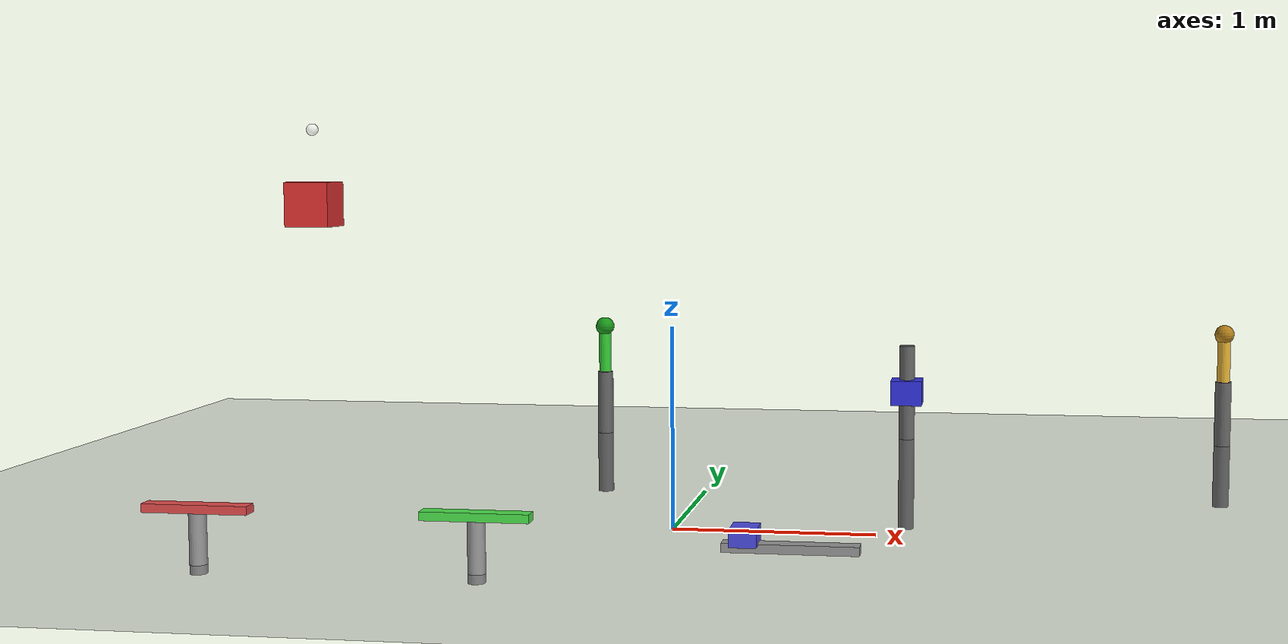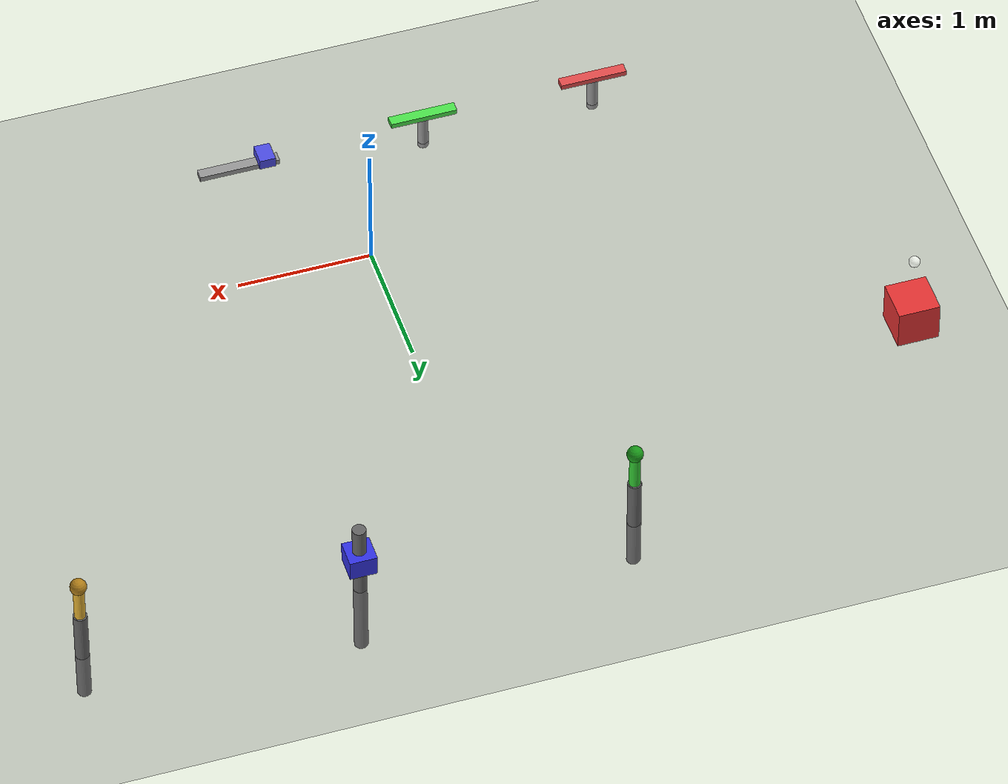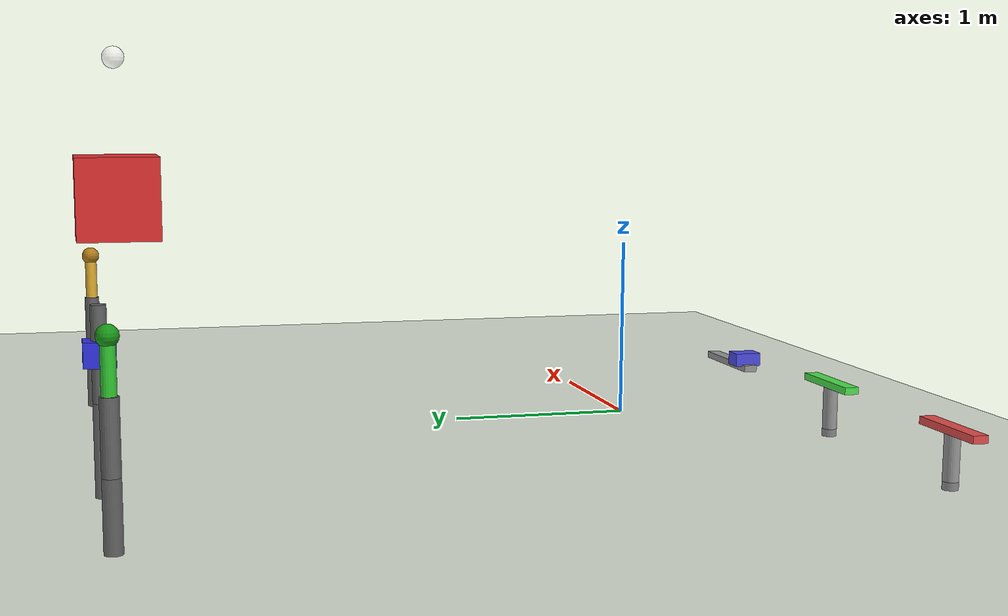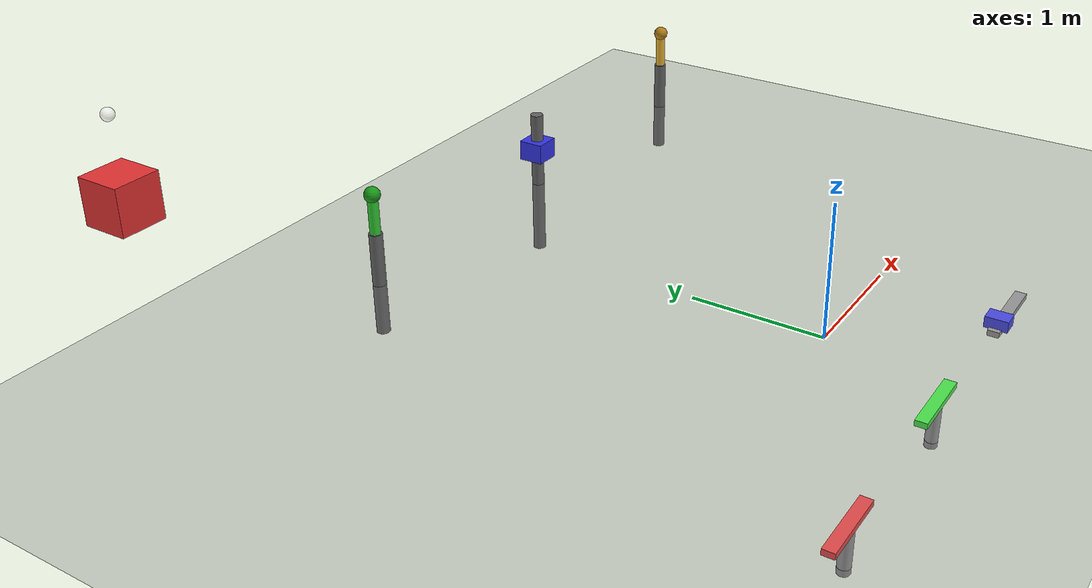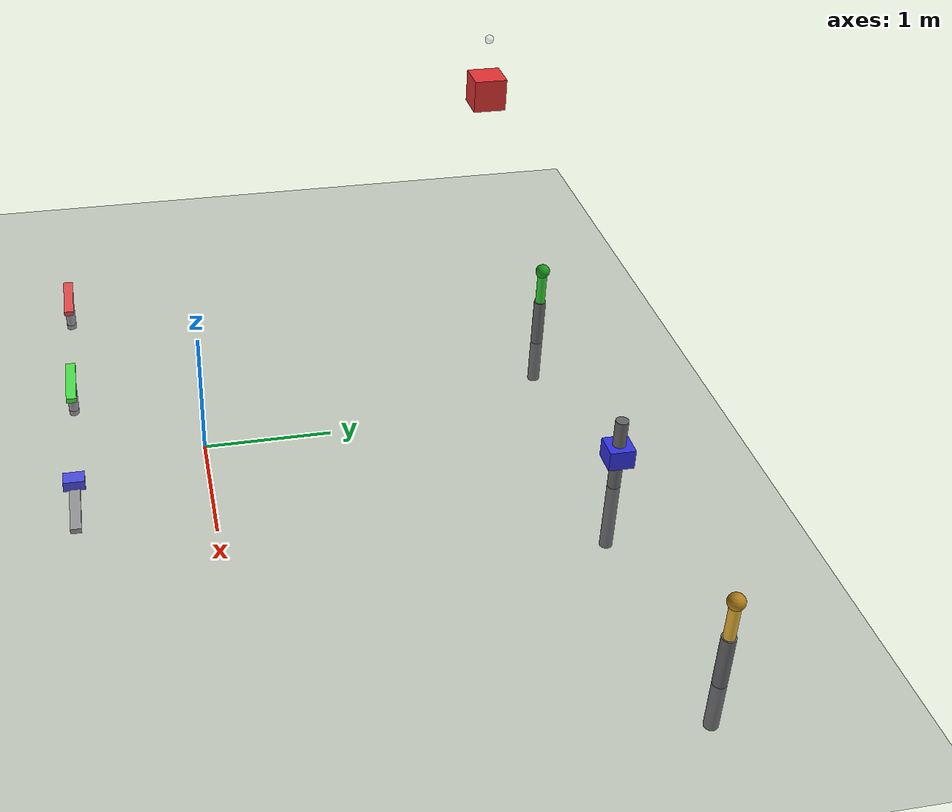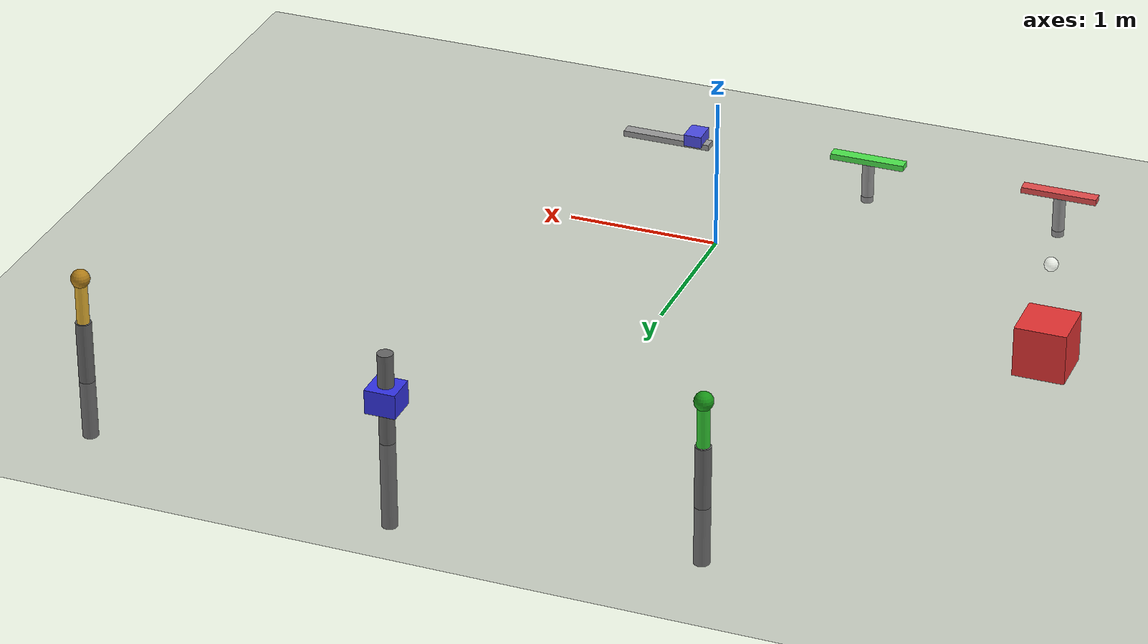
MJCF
<!-- 四种关节类型对比: free / ball / slide / hinge -->
<mujoco model="joint_types">
    <compiler angle="radian" autolimits="true"/>
    <option timestep="0.002" gravity="0 0 -9.81"/>

    <visual>
        <global realtime="1"/>
        <quality shadowsize="1024"/>
        <headlight diffuse="1 1 1" specular="0.5 0.5 0.5" active="1"/>
    </visual>

    <asset>
        <texture name="grid" type="2d" builtin="checker" width="512" height="512"
                 rgb1=".15 .15 .15" rgb2=".7 .7 .7"/>
        <material name="grid" texture="grid"/>
    </asset>

    <worldbody>
        <geom name="floor" type="plane" size="20 20 .01" material="grid" condim="3"/>

        <!-- freejoint: 完全自由运动 -->
        <body pos="-3 3 1.5">
            <freejoint/>
            <geom type="box" size="0.15 0.15 0.15" rgba=".9 .2 .2 1"/>
            <site type="sphere" size="0.04" rgba="1 1 1 .5" pos="0 0 0.5"/>
        </body>

        <!-- ball: 球形关节，固定在地面的柱子上方 -->
        <body pos="-1 3 0">
            <geom type="cylinder" size="0.05 0.4" rgba=".4 .4 .4 1"/>
            <body pos="0 0 0.4">
                <joint type="ball" pos="0 0 0"/>
                <geom type="capsule" size="0.04 0.3" rgba=".2 .8 .2 1"/>
                <geom type="sphere" size="0.06" rgba=".1 .6 .1 1" pos="0 0 0.3"/>
            </body>
        </body>

        <!-- slide: 滑轨关节，沿Y轴上下滑动 -->
        <body pos="1 3 0">
            <geom type="cylinder" size="0.05 0.6" rgba=".4 .4 .4 1"/>
            <!-- 滑轨槽（纯视觉） -->
            <site type="box" size="0.03 0.03 0.5" rgba=".3 .3 .3 .3"/>
            <body pos="0 0 0.3">
                <joint type="slide" pos="0 0 0" axis="0 0 1" range="-0.3 0.3"/>
                <geom type="box" size="0.1 0.1 0.08" rgba=".2 .2 .9 1"/>
            </body>
        </body>

        <!-- hinge: 旋转关节，绕Y轴旋转 -->
        <body pos="3 3 0">
            <geom type="cylinder" size="0.05 0.4" rgba=".4 .4 .4 1"/>
            <body pos="0 0 0.4">
                <joint type="hinge" pos="0 0 0" axis="0 1 0" range="-1.5 1.5"/>
                <geom type="capsule" size="0.04 0.3" rgba=".9 .7 .2 1"/>
                <geom type="sphere" size="0.06" rgba=".7 .5 .1 1" pos="0 0 0.3"/>
            </body>
        </body>

        <!-- 四关节对比: 相同父body下观察不同关节的运动差异 -->
        <!-- ball 连接水平旋转臂 -->
        <body pos="-2 -1 0.1">
            <geom type="cylinder" size="0.04 0.15" rgba=".6 .6 .6 1"/>
            <body pos="0 0 0.15">
                <joint type="ball"/>
                <geom type="box" size="0.25 0.04 0.02" rgba=".9 .3 .3 1"/>
            </body>
        </body>
        <!-- hinge 连接水平旋转臂 -->
        <body pos="-0.7 -1 0.1">
            <geom type="cylinder" size="0.04 0.15" rgba=".6 .6 .6 1"/>
            <body pos="0 0 0.15">
                <joint type="hinge" axis="0 0 1"/>
                <geom type="box" size="0.25 0.04 0.02" rgba=".3 .9 .3 1"/>
            </body>
        </body>
        <!-- slide 水平滑动块 -->
        <body pos="0.7 -1 0.15">
            <geom type="box" size="0.3 0.04 0.02" rgba=".6 .6 .6 1"/>
            <body pos="-0.2 0 0.05">
                <joint type="slide" axis="1 0 0" range="-0.2 0.2"/>
                <geom type="box" size="0.06 0.08 0.04" rgba=".3 .3 .9 1"/>
            </body>
        </body>
    </worldbody>
</mujoco>
